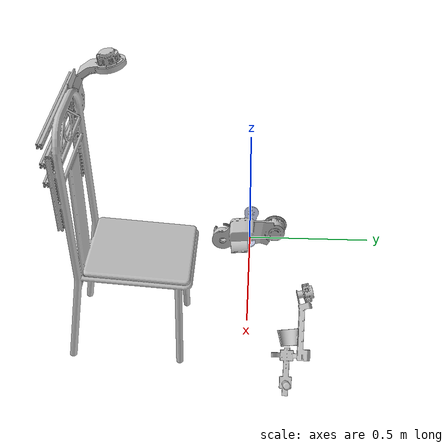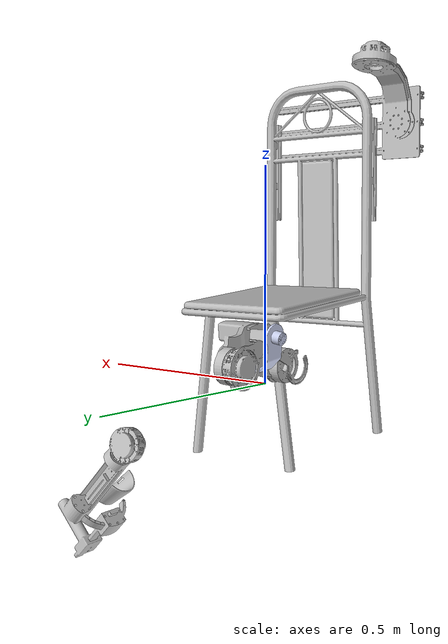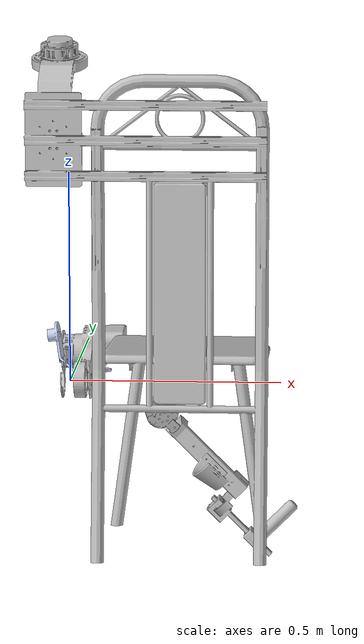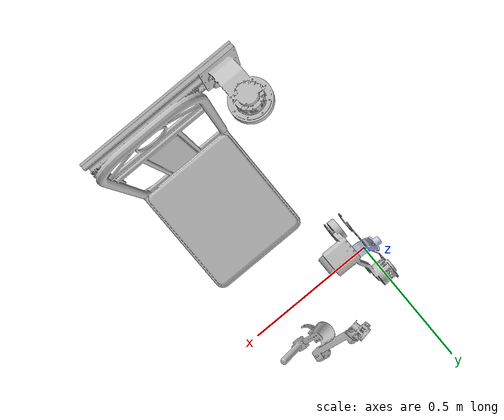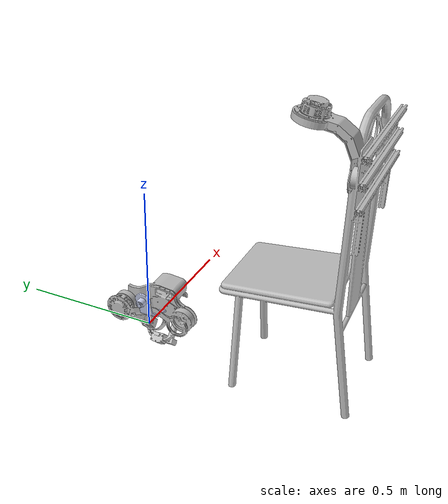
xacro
<?xml version="1.0"?>
<robot xmlns:xacro="http://www.ros.org/wiki/xacro" name="gim_arm">
    <xacro:arg name="initial_positions_file" default="initial_positions.yaml" />

    <!-- Import gim_arm urdf file -->
    <xacro:include filename="$(find gim_arm_description)/urdf/gim_arm.urdf" />

    <!-- Import control_xacro -->
    <xacro:include filename="gim_arm.ros2_control.xacro" />

    <xacro:gim_arm_ros2_control name="FakeSystem" initial_positions_file="$(arg initial_positions_file)"/>

</robot>

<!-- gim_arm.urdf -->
<robot name="gim_arm">

  <!-- Dummy root link to satisfy KDL (added) -->
  <link name="base_footprint"/>

  <!-- Tạo mặt đất ảo -->
  <link name="world"/>

  <!-- Bắt vít gốc của cánh tay xuống mặt đất ảo -->
  <joint name="world_fixed" type="fixed">
    <parent link="world"/>
    <child link="base_footprint"/>
    <origin xyz="0 0 0" rpy="0 0 0"/>
  </joint>

  <!-- Fixed joint from dummy root to base_link (added) -->
  <joint name="base_footprint_to_base_link" type="fixed">
    <parent link="base_footprint"/>
    <child link="base_link"/>
    <origin xyz="0 0 0" rpy="0 0 0"/>
  </joint>

  <link name="base_link">
    <inertial>
      <origin xyz="0.12514 -0.24189 -0.38484" rpy="0 0 0" />
      <mass value="6.6731" />
      <inertia
        ixx="0.31539"
        ixy="1.4901E-05"
        ixz="0.022379"
        iyy="0.29283"
        iyz="-2.4376E-05"
        izz="0.15732" />
    </inertial>
    <visual>
      <origin xyz="0 0 0" rpy="0 0 0" />
      <geometry>
        <mesh filename="package://gim_arm_description/meshes/base_link.STL" />
      </geometry>
      <material name="base_link_color">
        <color rgba="0.75294 0.75294 0.75294 1" />
      </material>
    </visual>
    <collision>
      <origin xyz="0 0 0" rpy="0 0 0" />
      <geometry>
        <mesh filename="package://gim_arm_description/meshes/base_link.STL" />
      </geometry>
    </collision>
  </link>

  <link name="shoulder_link">
    <inertial>
      <origin xyz="-1.3878E-17 0.060369 -0.036849" rpy="0 0 0" />
      <mass value="0.06547" />
      <inertia
        ixx="0.00018777"
        ixy="-6.6182E-20"
        ixz="6.7763E-20"
        iyy="0.00010552"
        iyz="7.374E-05"
        izz="0.0001159" />
    </inertial>
    <visual>
      <origin xyz="0 0 0" rpy="0 0 0" />
      <geometry>
        <mesh filename="package://gim_arm_description/meshes/shoulder_link.STL" />
      </geometry>
      <material name="shoulder_link_color">
        <color rgba="0.79216 0.81961 0.93333 1" />
      </material>
    </visual>
    <collision>
      <origin xyz="0 0 0" rpy="0 0 0" />
      <geometry>
        <mesh filename="package://gim_arm_description/meshes/shoulder_link.STL" />
      </geometry>
    </collision>
  </link>

  <joint name="base_joint" type="revolute">
    <origin xyz="0.12249 0 0.13463" rpy="0 -0.17453 0" />
    <parent link="base_link" />
    <child link="shoulder_link" />
    <axis xyz="0 0 -1" />
    <limit lower="0" upper="1.57" effort="5.0" velocity="12.5" />
  </joint>

  <link name="upper_arm_link">
    <inertial>
      <origin xyz="0.081498 -0.010308 0.016005" rpy="0 0 0" />
      <mass value="2.524" />
      <inertia
        ixx="0.002612"
        ixy="0.0010092"
        ixz="0.00048166"
        iyy="0.0061609"
        iyz="-4.4532E-05"
        izz="0.0079327" />
    </inertial>
    <visual>
      <origin xyz="0 0 0" rpy="0 0 0" />
      <geometry>
        <mesh filename="package://gim_arm_description/meshes/upper_arm_link.STL" />
      </geometry>
      <material name="upper_arm_link_color">
        <color rgba="0.75294 0.75294 0.75294 1" />
      </material>
    </visual>
    <collision>
      <origin xyz="0 0 0" rpy="0 0 0" />
      <geometry>
        <mesh filename="package://gim_arm_description/meshes/upper_arm_link.STL" />
      </geometry>
    </collision>
  </link>

  <joint name="shoulder_joint" type="revolute">
    <origin xyz="0 0.098298 -0.082481" rpy="0 1.3963 1.5708" />
    <parent link="shoulder_link" />
    <child link="upper_arm_link" />
    <axis xyz="0 0 -1" />
    <limit lower="-0.2" upper="1.57" effort="5.0" velocity="12.5" />
  </joint>

  <link name="lower_arm_link">
    <inertial>
      <origin xyz="0.21746 0.011437 -0.056567" rpy="0 0 0" />
      <mass value="0.586" />
      <inertia
        ixx="0.00058917"
        ixy="2.2812E-05"
        ixz="0.00025401"
        iyy="0.0015587"
        iyz="1.8284E-05"
        izz="0.0017331" />
    </inertial>
    <visual>
      <origin xyz="0 0 0" rpy="0 0 0" />
      <geometry>
        <mesh filename="package://gim_arm_description/meshes/lower_arm_link.STL" />
      </geometry>
      <material name="lower_arm_link_color">
        <color rgba="0.75294 0.75294 0.75294 1" />
      </material>
    </visual>
    <collision>
      <origin xyz="0 0 0" rpy="0 0 0" />
      <geometry>
        <mesh filename="package://gim_arm_description/meshes/lower_arm_link.STL" />
      </geometry>
    </collision>
  </link>

  <joint name="elbow_joint" type="revolute">
    <origin xyz="0.21367 -0.052381 -0.02" rpy="0 0 -0.59584" />
    <parent link="upper_arm_link" />
    <child link="lower_arm_link" />
    <axis xyz="0 0 1" />
    <limit lower="-1.57" upper="0" effort="5.0" velocity="12.5" />
  </joint>

  <ros2_control name="GimArmSystem" type="system">
  <hardware>
    <plugin>gim_arm_hardware/GimArmSystemHardware</plugin>
  </hardware>
  <joint name="base_joint">
    <command_interface name="position"/>
    <state_interface name="position"/>
  </joint>
  <joint name="shoulder_joint">
    <command_interface name="position"/>
    <state_interface name="position"/>
  </joint>
  <joint name="elbow_joint">
    <command_interface name="position"/>
    <state_interface name="position"/>
  </joint>
</ros2_control>

<!-- param cho node_id + CAN interface + state verlocity -->
<ros2_control name="GimArmSystem" type="system">
  <hardware>
    <plugin>gim_arm_hardware/GimArmSystemHardware</plugin>
    <param name="can_interface">can0</param>
  </hardware>
  <joint name="base_joint">
    <command_interface name="position"/>
    <state_interface name="position"/>
    <state_interface name="velocity"/>
    <param name="can_node_id">0</param>
  </joint>
  <joint name="shoulder_joint">
    <command_interface name="position"/>
    <state_interface name="position"/>
    <state_interface name="velocity"/>
    <param name="can_node_id">1</param>
  </joint>
  <joint name="elbow_joint">
    <command_interface name="position"/>
    <state_interface name="position"/>
    <state_interface name="velocity"/>
    <param name="can_node_id">2</param>
  </joint>
</ros2_control>

</robot>
